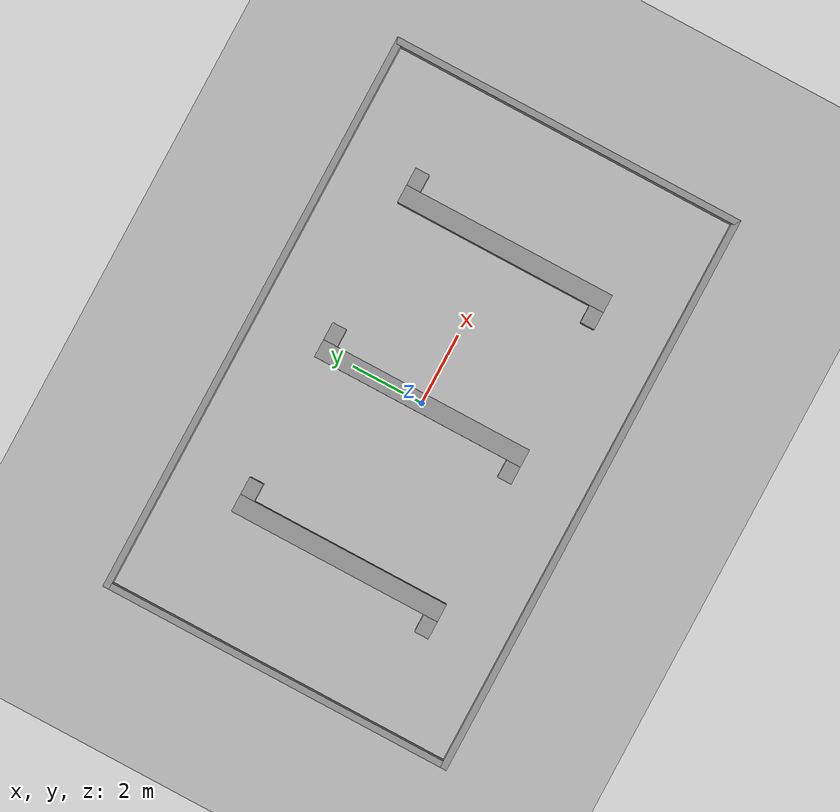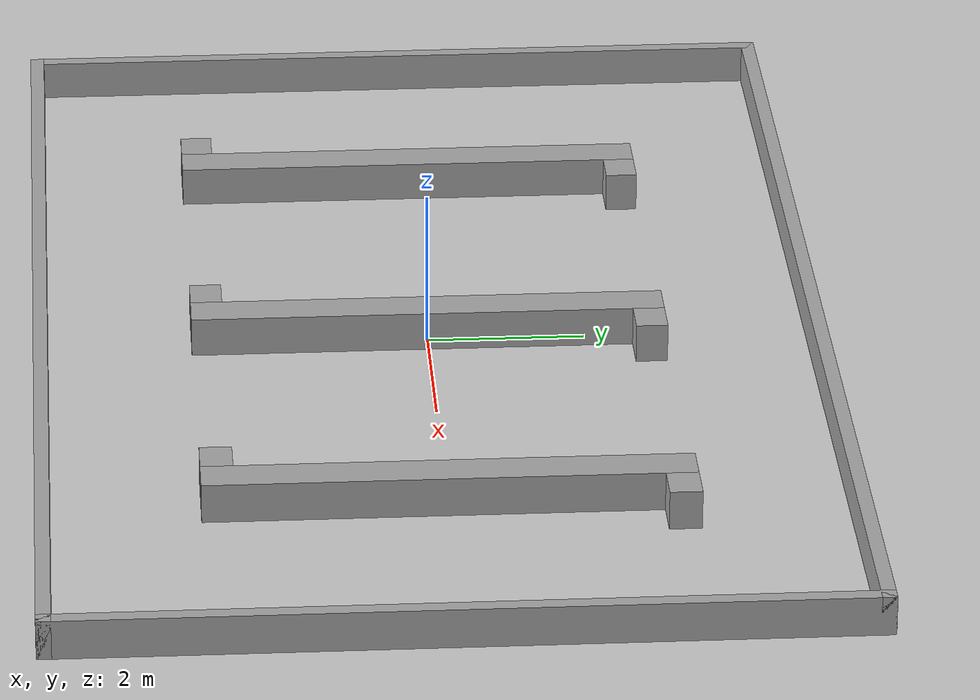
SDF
<?xml version='1.0'?>
<sdf version='1.7'>
  <world name='warehouse_like'>
    <physics name='1ms' type='ignored'>
      <max_step_size>0.001</max_step_size>
      <real_time_factor>1.0</real_time_factor>
    </physics>
    <plugin filename='gz-sim-physics-system' name='gz::sim::systems::Physics'/>
    <plugin filename='gz-sim-user-commands-system' name='gz::sim::systems::UserCommands'/>
    <plugin filename='gz-sim-scene-broadcaster-system' name='gz::sim::systems::SceneBroadcaster'/>
    <light type='directional' name='sun'>
      <cast_shadows>true</cast_shadows>
      <pose>0 0 10 0 0 0</pose>
      <diffuse>0.8 0.8 0.8 1</diffuse>
      <specular>0.2 0.2 0.2 1</specular>
      <direction>-0.5 0.1 -0.9</direction>
    </light>
    <model name='ground_plane'>
      <static>true</static>
      <link name='link'>
        <collision name='collision'><geometry><plane><normal>0 0 1</normal><size>30 30</size></plane></geometry></collision>
        <visual name='visual'><geometry><plane><normal>0 0 1</normal><size>30 30</size></plane></geometry><material><ambient>0.8 0.8 0.8 1</ambient><diffuse>0.8 0.8 0.8 1</diffuse></material></visual>
      </link>
    </model>

    <model name='wall_0'>
      <static>true</static>
      <pose>0.000 -4.910 0.250 0 0 0</pose>
      <link name='link'>
        <collision name='collision'>
          <geometry><box><size>16.000 0.180 0.500</size></box></geometry>
        </collision>
        <visual name='visual'>
          <geometry><box><size>16.000 0.180 0.500</size></box></geometry>
          <material><ambient>0.65 0.65 0.65 1</ambient><diffuse>0.65 0.65 0.65 1</diffuse></material>
        </visual>
      </link>
    </model>

    <model name='wall_1'>
      <static>true</static>
      <pose>0.000 4.910 0.250 0 0 0</pose>
      <link name='link'>
        <collision name='collision'>
          <geometry><box><size>16.000 0.180 0.500</size></box></geometry>
        </collision>
        <visual name='visual'>
          <geometry><box><size>16.000 0.180 0.500</size></box></geometry>
          <material><ambient>0.65 0.65 0.65 1</ambient><diffuse>0.65 0.65 0.65 1</diffuse></material>
        </visual>
      </link>
    </model>

    <model name='wall_2'>
      <static>true</static>
      <pose>-7.910 0.000 0.250 0 0 0</pose>
      <link name='link'>
        <collision name='collision'>
          <geometry><box><size>0.180 10.000 0.500</size></box></geometry>
        </collision>
        <visual name='visual'>
          <geometry><box><size>0.180 10.000 0.500</size></box></geometry>
          <material><ambient>0.65 0.65 0.65 1</ambient><diffuse>0.65 0.65 0.65 1</diffuse></material>
        </visual>
      </link>
    </model>

    <model name='wall_3'>
      <static>true</static>
      <pose>7.910 0.000 0.250 0 0 0</pose>
      <link name='link'>
        <collision name='collision'>
          <geometry><box><size>0.180 10.000 0.500</size></box></geometry>
        </collision>
        <visual name='visual'>
          <geometry><box><size>0.180 10.000 0.500</size></box></geometry>
          <material><ambient>0.65 0.65 0.65 1</ambient><diffuse>0.65 0.65 0.65 1</diffuse></material>
        </visual>
      </link>
    </model>

    <model name='wall_4'>
      <static>true</static>
      <pose>-4.500 0.000 0.250 0 0 0</pose>
      <link name='link'>
        <collision name='collision'>
          <geometry><box><size>0.500 6.000 0.500</size></box></geometry>
        </collision>
        <visual name='visual'>
          <geometry><box><size>0.500 6.000 0.500</size></box></geometry>
          <material><ambient>0.65 0.65 0.65 1</ambient><diffuse>0.65 0.65 0.65 1</diffuse></material>
        </visual>
      </link>
    </model>

    <model name='wall_5'>
      <static>true</static>
      <pose>-5.000 -2.800 0.250 0 0 0</pose>
      <link name='link'>
        <collision name='collision'>
          <geometry><box><size>0.500 0.400 0.500</size></box></geometry>
        </collision>
        <visual name='visual'>
          <geometry><box><size>0.500 0.400 0.500</size></box></geometry>
          <material><ambient>0.65 0.65 0.65 1</ambient><diffuse>0.65 0.65 0.65 1</diffuse></material>
        </visual>
      </link>
    </model>

    <model name='wall_6'>
      <static>true</static>
      <pose>-4.000 2.800 0.250 0 0 0</pose>
      <link name='link'>
        <collision name='collision'>
          <geometry><box><size>0.500 0.400 0.500</size></box></geometry>
        </collision>
        <visual name='visual'>
          <geometry><box><size>0.500 0.400 0.500</size></box></geometry>
          <material><ambient>0.65 0.65 0.65 1</ambient><diffuse>0.65 0.65 0.65 1</diffuse></material>
        </visual>
      </link>
    </model>

    <model name='wall_7'>
      <static>true</static>
      <pose>0.000 0.000 0.250 0 0 0</pose>
      <link name='link'>
        <collision name='collision'>
          <geometry><box><size>0.500 6.000 0.500</size></box></geometry>
        </collision>
        <visual name='visual'>
          <geometry><box><size>0.500 6.000 0.500</size></box></geometry>
          <material><ambient>0.65 0.65 0.65 1</ambient><diffuse>0.65 0.65 0.65 1</diffuse></material>
        </visual>
      </link>
    </model>

    <model name='wall_8'>
      <static>true</static>
      <pose>-0.500 -2.800 0.250 0 0 0</pose>
      <link name='link'>
        <collision name='collision'>
          <geometry><box><size>0.500 0.400 0.500</size></box></geometry>
        </collision>
        <visual name='visual'>
          <geometry><box><size>0.500 0.400 0.500</size></box></geometry>
          <material><ambient>0.65 0.65 0.65 1</ambient><diffuse>0.65 0.65 0.65 1</diffuse></material>
        </visual>
      </link>
    </model>

    <model name='wall_9'>
      <static>true</static>
      <pose>0.500 2.800 0.250 0 0 0</pose>
      <link name='link'>
        <collision name='collision'>
          <geometry><box><size>0.500 0.400 0.500</size></box></geometry>
        </collision>
        <visual name='visual'>
          <geometry><box><size>0.500 0.400 0.500</size></box></geometry>
          <material><ambient>0.65 0.65 0.65 1</ambient><diffuse>0.65 0.65 0.65 1</diffuse></material>
        </visual>
      </link>
    </model>

    <model name='wall_10'>
      <static>true</static>
      <pose>4.500 0.000 0.250 0 0 0</pose>
      <link name='link'>
        <collision name='collision'>
          <geometry><box><size>0.500 6.000 0.500</size></box></geometry>
        </collision>
        <visual name='visual'>
          <geometry><box><size>0.500 6.000 0.500</size></box></geometry>
          <material><ambient>0.65 0.65 0.65 1</ambient><diffuse>0.65 0.65 0.65 1</diffuse></material>
        </visual>
      </link>
    </model>

    <model name='wall_11'>
      <static>true</static>
      <pose>4.000 -2.800 0.250 0 0 0</pose>
      <link name='link'>
        <collision name='collision'>
          <geometry><box><size>0.500 0.400 0.500</size></box></geometry>
        </collision>
        <visual name='visual'>
          <geometry><box><size>0.500 0.400 0.500</size></box></geometry>
          <material><ambient>0.65 0.65 0.65 1</ambient><diffuse>0.65 0.65 0.65 1</diffuse></material>
        </visual>
      </link>
    </model>

    <model name='wall_12'>
      <static>true</static>
      <pose>5.000 2.800 0.250 0 0 0</pose>
      <link name='link'>
        <collision name='collision'>
          <geometry><box><size>0.500 0.400 0.500</size></box></geometry>
        </collision>
        <visual name='visual'>
          <geometry><box><size>0.500 0.400 0.500</size></box></geometry>
          <material><ambient>0.65 0.65 0.65 1</ambient><diffuse>0.65 0.65 0.65 1</diffuse></material>
        </visual>
      </link>
    </model>
  </world>
</sdf>
